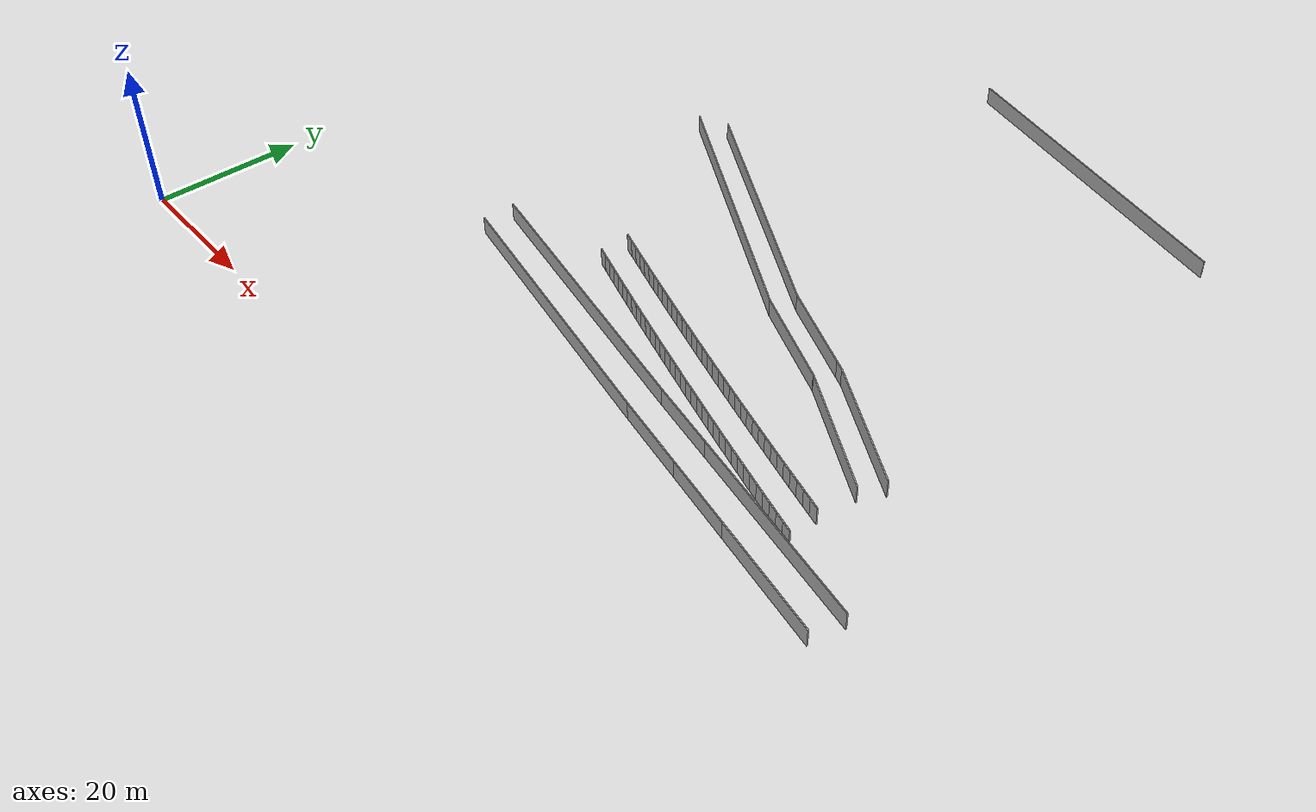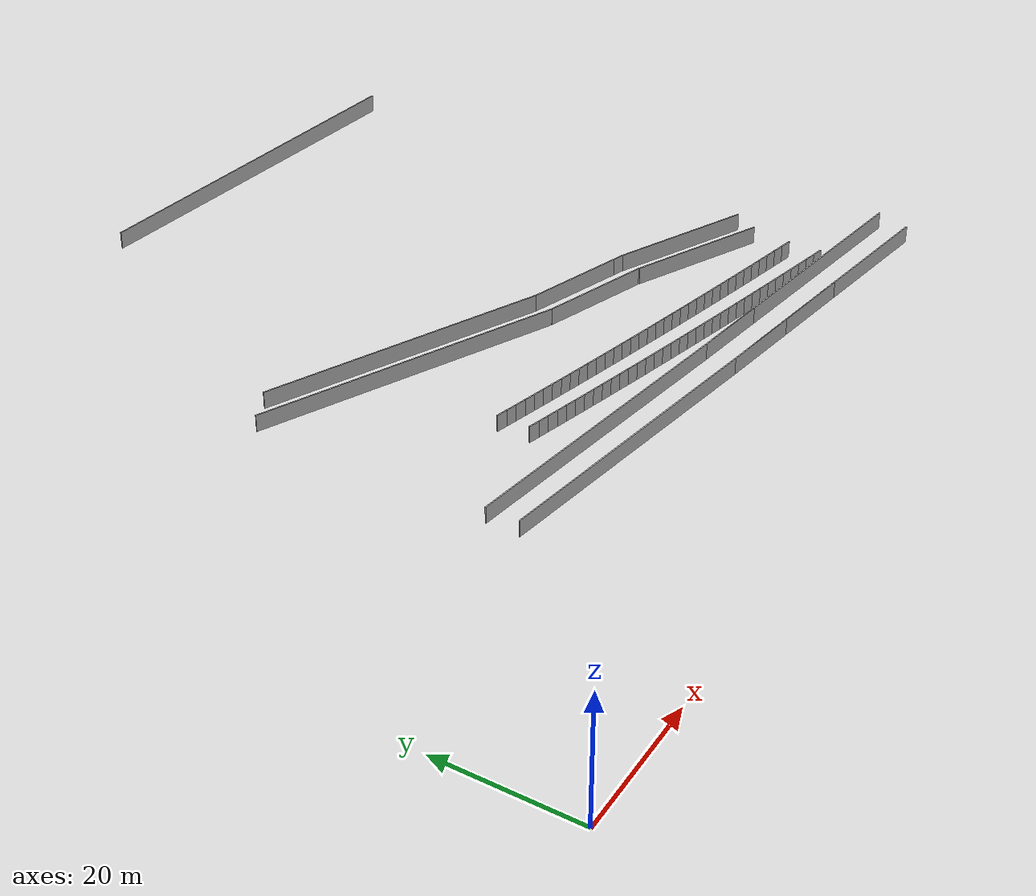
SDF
<sdf version="1.6">
 <model name="sps_0802">
  <static>1</static>
  <allow_auto_disable>0</allow_auto_disable>
  <link name="Wall115">
   <collision name="collision"><geometry><box><size>18.2188 0.15 2.5</size></box></geometry></collision>
   <visual name="visual">
    <geometry><box><size>18.2188 0.15 2.5</size></box></geometry>
    <transparency>0.0</transparency>
   </visual>
   <pose>93.8209 39.7331 1.25 0 0 -0.498938</pose>
  </link>
  <link name="Wall116">
   <collision name="collision"><geometry><box><size>10.5897 0.15 2.5</size></box></geometry></collision>
   <visual name="visual">
    <geometry><box><size>10.5897 0.15 2.5</size></box></geometry>
    <transparency>0.0</transparency>
   </visual>
   <pose>79.2566 20.6364 1.25 0 0 -0.176184</pose>
  </link>
  <link name="Wall117">
   <collision name="collision"><geometry><box><size>10.3568 0.15 2.5</size></box></geometry></collision>
   <visual name="visual">
    <geometry><box><size>10.3568 0.15 2.5</size></box></geometry>
    <transparency>0.0</transparency>
   </visual>
   <pose>89.5677 18.8007 1.25 0 0 -0.176184</pose>
  </link>
  <link name="Wall189">
   <collision name="collision"><geometry><box><size>41.7006 0.15 2.5</size></box></geometry></collision>
   <visual name="visual">
    <geometry><box><size>41.7006 0.15 2.5</size></box></geometry>
    <transparency>0.0</transparency>
   </visual>
   <pose>52.7782 56.1772 1.25 0 -0 2.64268</pose>
  </link>
  <link name="Wall195">
   <collision name="collision"><geometry><box><size>14.2591 0.15 2.5</size></box></geometry></collision>
   <visual name="visual">
    <geometry><box><size>14.2591 0.15 2.5</size></box></geometry>
    <transparency>0.0</transparency>
   </visual>
   <pose>77.7093 43.5599 1.25 0 -0 2.76212</pose>
  </link>
  <link name="Wall283">
   <collision name="collision"><geometry><box><size>41.0751 0.15 2.5</size></box></geometry></collision>
   <visual name="visual">
    <geometry><box><size>41.0751 0.15 2.5</size></box></geometry>
    <transparency>0.0</transparency>
   </visual>
   <pose>54.6443 29.8393 1.25 0 -0 2.95339</pose>
  </link>
  <link name="Wall285">
   <collision name="collision"><geometry><box><size>9.80231 0.15 2.5</size></box></geometry></collision>
   <visual name="visual">
    <geometry><box><size>9.80231 0.15 2.5</size></box></geometry>
    <transparency>0.0</transparency>
   </visual>
   <pose>79.6443 25.1368 1.25 0 0 -0.176394</pose>
  </link>
  <link name="Wall286">
   <collision name="collision"><geometry><box><size>27.6822 0.15 2.5</size></box></geometry></collision>
   <visual name="visual">
    <geometry><box><size>27.6822 0.15 2.5</size></box></geometry>
    <transparency>0.0</transparency>
   </visual>
   <pose>98.0958 21.8479 1.25 0 0 -0.176394</pose>
  </link>
  <link name="Wall352">
   <collision name="collision"><geometry><box><size>40.2857 0.15 2.5</size></box></geometry></collision>
   <visual name="visual">
    <geometry><box><size>40.2857 0.15 2.5</size></box></geometry>
    <transparency>0.0</transparency>
   </visual>
   <pose>54.2566 25.3333 1.25 0 -0 2.95338</pose>
  </link>
  <link name="Wall433">
   <collision name="collision"><geometry><box><size>12.8028 0.15 2.5</size></box></geometry></collision>
   <visual name="visual">
    <geometry><box><size>12.8028 0.15 2.5</size></box></geometry>
    <transparency>0.0</transparency>
   </visual>
   <pose>78.5235 47.0026 1.25 0 0 -0.379479</pose>
  </link>
  <link name="Wall434">
   <collision name="collision"><geometry><box><size>1.4562 0.15 2.5</size></box></geometry></collision>
   <visual name="visual">
    <geometry><box><size>1.4562 0.15 2.5</size></box></geometry>
    <transparency>0.0</transparency>
   </visual>
   <pose>85.1457 44.3616 1.25 0 0 -0.379479</pose>
  </link>
  <link name="Wall531">
   <collision name="collision"><geometry><box><size>38.7045 0.15 2.5</size></box></geometry></collision>
   <visual name="visual">
    <geometry><box><size>38.7045 0.15 2.5</size></box></geometry>
    <transparency>0.0</transparency>
   </visual>
   <pose>55.5843 58.6335 1.25 0 0 -0.498918</pose>
  </link>
  <link name="Wall612">
   <collision name="collision"><geometry><box><size>17.9531 0.15 2.5</size></box></geometry></collision>
   <visual name="visual">
    <geometry><box><size>17.9531 0.15 2.5</size></box></geometry>
    <transparency>0.0</transparency>
   </visual>
   <pose>92.3516 36.5486 1.25 0 -0 2.64265</pose>
  </link>
  <link name="Wall613">
   <collision name="collision"><geometry><box><size>0.156951 0.15 2.5</size></box></geometry></collision>
   <visual name="visual">
    <geometry><box><size>0.156951 0.15 2.5</size></box></geometry>
    <transparency>0.0</transparency>
   </visual>
   <pose>84.4005 40.8813 1.25 0 -0 2.64265</pose>
  </link>
  <link name="Wall996">
   <collision name="collision"><geometry><box><size>37.2045 0.15 2.5</size></box></geometry></collision>
   <visual name="visual">
    <geometry><box><size>37.2045 0.15 2.5</size></box></geometry>
    <transparency>0.0</transparency>
   </visual>
   <pose>92.358 18.304 1.25 0 -0 2.96541</pose>
  </link>
  <link name="Wall1006">
   <collision name="collision"><geometry><box><size>37.4845 0.15 2.5</size></box></geometry></collision>
   <visual name="visual">
    <geometry><box><size>37.4845 0.15 2.5</size></box></geometry>
    <transparency>0.0</transparency>
   </visual>
   <pose>93.2707 22.708 1.25 0 0 -0.176394</pose>
  </link>
  <link name="Wall6628">
   <collision name="collision"><geometry><box><size>45.9415 0.15 2.5</size></box></geometry></collision>
   <visual name="visual">
    <geometry><box><size>45.9415 0.15 2.5</size></box></geometry>
    <transparency>0.0</transparency>
   </visual>
   <pose>78.7053 98.127 1.25 0 -0 2.9176</pose>
  </link>
  <link name="Wall8858">
   <collision name="collision"><geometry><box><size>1.49898 0.15 2.5</size></box></geometry></collision>
   <visual name="visual">
    <geometry><box><size>1.49898 0.15 2.5</size></box></geometry>
    <transparency>0.0</transparency>
   </visual>
   <pose>50.3594 36.5145 1.25 0 0 -0.302397</pose>
  </link>
  <link name="Wall8859">
   <collision name="collision"><geometry><box><size>1.49897 0.15 2.5</size></box></geometry></collision>
   <visual name="visual">
    <geometry><box><size>1.49897 0.15 2.5</size></box></geometry>
    <transparency>0.0</transparency>
   </visual>
   <pose>51.7906 36.0691 1.25 0 0 -0.300993</pose>
  </link>
  <link name="Wall8860">
   <collision name="collision"><geometry><box><size>1.49889 0.15 2.5</size></box></geometry></collision>
   <visual name="visual">
    <geometry><box><size>1.49889 0.15 2.5</size></box></geometry>
    <transparency>0.0</transparency>
   </visual>
   <pose>53.2226 35.6259 1.25 0 0 -0.299304</pose>
  </link>
  <link name="Wall8861">
   <collision name="collision"><geometry><box><size>1.49891 0.15 2.5</size></box></geometry></collision>
   <visual name="visual">
    <geometry><box><size>1.49891 0.15 2.5</size></box></geometry>
    <transparency>0.0</transparency>
   </visual>
   <pose>54.6552 35.1851 1.25 0 0 -0.297682</pose>
  </link>
  <link name="Wall8862">
   <collision name="collision"><geometry><box><size>1.49883 0.15 2.5</size></box></geometry></collision>
   <visual name="visual">
    <geometry><box><size>1.49883 0.15 2.5</size></box></geometry>
    <transparency>0.0</transparency>
   </visual>
   <pose>56.0885 34.7466 1.25 0 0 -0.296122</pose>
  </link>
  <link name="Wall8863">
   <collision name="collision"><geometry><box><size>1.49897 0.15 2.5</size></box></geometry></collision>
   <visual name="visual">
    <geometry><box><size>1.49897 0.15 2.5</size></box></geometry>
    <transparency>0.0</transparency>
   </visual>
   <pose>57.5225 34.3103 1.25 0 0 -0.294604</pose>
  </link>
  <link name="Wall8864">
   <collision name="collision"><geometry><box><size>1.49907 0.15 2.5</size></box></geometry></collision>
   <visual name="visual">
    <geometry><box><size>1.49907 0.15 2.5</size></box></geometry>
    <transparency>0.0</transparency>
   </visual>
   <pose>58.9572 33.8762 1.25 0 0 -0.293009</pose>
  </link>
  <link name="Wall8865">
   <collision name="collision"><geometry><box><size>1.4988 0.15 2.5</size></box></geometry></collision>
   <visual name="visual">
    <geometry><box><size>1.4988 0.15 2.5</size></box></geometry>
    <transparency>0.0</transparency>
   </visual>
   <pose>60.3926 33.4444 1.25 0 0 -0.291406</pose>
  </link>
  <link name="Wall8866">
   <collision name="collision"><geometry><box><size>1.49893 0.15 2.5</size></box></geometry></collision>
   <visual name="visual">
    <geometry><box><size>1.49893 0.15 2.5</size></box></geometry>
    <transparency>0.0</transparency>
   </visual>
   <pose>61.8286 33.0149 1.25 0 0 -0.28985</pose>
  </link>
  <link name="Wall8867">
   <collision name="collision"><geometry><box><size>1.49906 0.15 2.5</size></box></geometry></collision>
   <visual name="visual">
    <geometry><box><size>1.49906 0.15 2.5</size></box></geometry>
    <transparency>0.0</transparency>
   </visual>
   <pose>63.2654 32.5876 1.25 0 0 -0.288294</pose>
  </link>
  <link name="Wall8868">
   <collision name="collision"><geometry><box><size>1.4989 0.15 2.5</size></box></geometry></collision>
   <visual name="visual">
    <geometry><box><size>1.4989 0.15 2.5</size></box></geometry>
    <transparency>0.0</transparency>
   </visual>
   <pose>64.7029 32.1627 1.25 0 0 -0.2865</pose>
  </link>
  <link name="Wall8869">
   <collision name="collision"><geometry><box><size>1.49892 0.15 2.5</size></box></geometry></collision>
   <visual name="visual">
    <geometry><box><size>1.49892 0.15 2.5</size></box></geometry>
    <transparency>0.0</transparency>
   </visual>
   <pose>66.141 31.7401 1.25 0 0 -0.285096</pose>
  </link>
  <link name="Wall8870">
   <collision name="collision"><geometry><box><size>1.49896 0.15 2.5</size></box></geometry></collision>
   <visual name="visual">
    <geometry><box><size>1.49896 0.15 2.5</size></box></geometry>
    <transparency>0.0</transparency>
   </visual>
   <pose>67.5799 31.3198 1.25 0 0 -0.283305</pose>
  </link>
  <link name="Wall8871">
   <collision name="collision"><geometry><box><size>1.49905 0.15 2.5</size></box></geometry></collision>
   <visual name="visual">
    <geometry><box><size>1.49905 0.15 2.5</size></box></geometry>
    <transparency>0.0</transparency>
   </visual>
   <pose>69.0194 30.9017 1.25 0 0 -0.282058</pose>
  </link>
  <link name="Wall8872">
   <collision name="collision"><geometry><box><size>1.49891 0.15 2.5</size></box></geometry></collision>
   <visual name="visual">
    <geometry><box><size>1.49891 0.15 2.5</size></box></geometry>
    <transparency>0.0</transparency>
   </visual>
   <pose>70.4595 30.4857 1.25 0 0 -0.280392</pose>
  </link>
  <link name="Wall8873">
   <collision name="collision"><geometry><box><size>1.49882 0.15 2.5</size></box></geometry></collision>
   <visual name="visual">
    <geometry><box><size>1.49882 0.15 2.5</size></box></geometry>
    <transparency>0.0</transparency>
   </visual>
   <pose>71.9001 30.0721 1.25 0 0 -0.278714</pose>
  </link>
  <link name="Wall8874">
   <collision name="collision"><geometry><box><size>1.49905 0.15 2.5</size></box></geometry></collision>
   <visual name="visual">
    <geometry><box><size>1.49905 0.15 2.5</size></box></geometry>
    <transparency>0.0</transparency>
   </visual>
   <pose>73.3415 29.6608 1.25 0 0 -0.277187</pose>
  </link>
  <link name="Wall8875">
   <collision name="collision"><geometry><box><size>1.49893 0.15 2.5</size></box></geometry></collision>
   <visual name="visual">
    <geometry><box><size>1.49893 0.15 2.5</size></box></geometry>
    <transparency>0.0</transparency>
   </visual>
   <pose>74.7837 29.2518 1.25 0 0 -0.275559</pose>
  </link>
  <link name="Wall8876">
   <collision name="collision"><geometry><box><size>1.49891 0.15 2.5</size></box></geometry></collision>
   <visual name="visual">
    <geometry><box><size>1.49891 0.15 2.5</size></box></geometry>
    <transparency>0.0</transparency>
   </visual>
   <pose>76.2263 28.8451 1.25 0 0 -0.273998</pose>
  </link>
  <link name="Wall8877">
   <collision name="collision"><geometry><box><size>1.4989 0.15 2.5</size></box></geometry></collision>
   <visual name="visual">
    <geometry><box><size>1.4989 0.15 2.5</size></box></geometry>
    <transparency>0.0</transparency>
   </visual>
   <pose>77.6696 28.4406 1.25 0 0 -0.272477</pose>
  </link>
  <link name="Wall8878">
   <collision name="collision"><geometry><box><size>1.49903 0.15 2.5</size></box></geometry></collision>
   <visual name="visual">
    <geometry><box><size>1.49903 0.15 2.5</size></box></geometry>
    <transparency>0.0</transparency>
   </visual>
   <pose>79.1136 28.0384 1.25 0 0 -0.270805</pose>
  </link>
  <link name="Wall8879">
   <collision name="collision"><geometry><box><size>1.49903 0.15 2.5</size></box></geometry></collision>
   <visual name="visual">
    <geometry><box><size>1.49903 0.15 2.5</size></box></geometry>
    <transparency>0.0</transparency>
   </visual>
   <pose>80.5583 27.6385 1.25 0 0 -0.269284</pose>
  </link>
  <link name="Wall8880">
   <collision name="collision"><geometry><box><size>1.49886 0.15 2.5</size></box></geometry></collision>
   <visual name="visual">
    <geometry><box><size>1.49886 0.15 2.5</size></box></geometry>
    <transparency>0.0</transparency>
   </visual>
   <pose>82.0036 27.2408 1.25 0 0 -0.267795</pose>
  </link>
  <link name="Wall8881">
   <collision name="collision"><geometry><box><size>1.49894 0.15 2.5</size></box></geometry></collision>
   <visual name="visual">
    <geometry><box><size>1.49894 0.15 2.5</size></box></geometry>
    <transparency>0.0</transparency>
   </visual>
   <pose>83.4494 26.8454 1.25 0 0 -0.266134</pose>
  </link>
  <link name="Wall8882">
   <collision name="collision"><geometry><box><size>1.49899 0.15 2.5</size></box></geometry></collision>
   <visual name="visual">
    <geometry><box><size>1.49899 0.15 2.5</size></box></geometry>
    <transparency>0.0</transparency>
   </visual>
   <pose>84.8959 26.4523 1.25 0 0 -0.264563</pose>
  </link>
  <link name="Wall8883">
   <collision name="collision"><geometry><box><size>1.4989 0.15 2.5</size></box></geometry></collision>
   <visual name="visual">
    <geometry><box><size>1.4989 0.15 2.5</size></box></geometry>
    <transparency>0.0</transparency>
   </visual>
   <pose>86.343 26.0615 1.25 0 0 -0.262934</pose>
  </link>
  <link name="Wall8884">
   <collision name="collision"><geometry><box><size>1.49888 0.15 2.5</size></box></geometry></collision>
   <visual name="visual">
    <geometry><box><size>1.49888 0.15 2.5</size></box></geometry>
    <transparency>0.0</transparency>
   </visual>
   <pose>87.7907 25.6731 1.25 0 0 -0.261295</pose>
  </link>
  <link name="Wall8885">
   <collision name="collision"><geometry><box><size>1.4989 0.15 2.5</size></box></geometry></collision>
   <visual name="visual">
    <geometry><box><size>1.4989 0.15 2.5</size></box></geometry>
    <transparency>0.0</transparency>
   </visual>
   <pose>89.239 25.287 1.25 0 0 -0.259774</pose>
  </link>
  <link name="Wall8886">
   <collision name="collision"><geometry><box><size>1.49887 0.15 2.5</size></box></geometry></collision>
   <visual name="visual">
    <geometry><box><size>1.49887 0.15 2.5</size></box></geometry>
    <transparency>0.0</transparency>
   </visual>
   <pose>90.6879 24.9031 1.25 0 0 -0.258263</pose>
  </link>
  <link name="Wall8887">
   <collision name="collision"><geometry><box><size>1.49913 0.15 2.5</size></box></geometry></collision>
   <visual name="visual">
    <geometry><box><size>1.49913 0.15 2.5</size></box></geometry>
    <transparency>0.0</transparency>
   </visual>
   <pose>92.1374 24.5214 1.25 0 0 -0.2567</pose>
  </link>
  <link name="Wall8888">
   <collision name="collision"><geometry><box><size>1.49882 0.15 2.5</size></box></geometry></collision>
   <visual name="visual">
    <geometry><box><size>1.49882 0.15 2.5</size></box></geometry>
    <transparency>0.0</transparency>
   </visual>
   <pose>93.5876 24.1421 1.25 0 0 -0.254944</pose>
  </link>
  <link name="Wall8889">
   <collision name="collision"><geometry><box><size>1.49897 0.15 2.5</size></box></geometry></collision>
   <visual name="visual">
    <geometry><box><size>1.49897 0.15 2.5</size></box></geometry>
    <transparency>0.0</transparency>
   </visual>
   <pose>95.0384 23.7651 1.25 0 0 -0.253531</pose>
  </link>
  <link name="Wall8890">
   <collision name="collision"><geometry><box><size>1.49908 0.15 2.5</size></box></geometry></collision>
   <visual name="visual">
    <geometry><box><size>1.49908 0.15 2.5</size></box></geometry>
    <transparency>0.0</transparency>
   </visual>
   <pose>96.4898 23.3903 1.25 0 0 -0.251871</pose>
  </link>
  <link name="Wall8891">
   <collision name="collision"><geometry><box><size>1.49895 0.15 2.5</size></box></geometry></collision>
   <visual name="visual">
    <geometry><box><size>1.49895 0.15 2.5</size></box></geometry>
    <transparency>0.0</transparency>
   </visual>
   <pose>97.9418 23.0178 1.25 0 0 -0.250381</pose>
  </link>
  <link name="Wall8892">
   <collision name="collision"><geometry><box><size>1.49889 0.15 2.5</size></box></geometry></collision>
   <visual name="visual">
    <geometry><box><size>1.49889 0.15 2.5</size></box></geometry>
    <transparency>0.0</transparency>
   </visual>
   <pose>99.3942 22.6476 1.25 0 0 -0.248751</pose>
  </link>
  <link name="Wall9938">
   <collision name="collision"><geometry><box><size>1.4924 0.15 2.5</size></box></geometry></collision>
   <visual name="visual">
    <geometry><box><size>1.4924 0.15 2.5</size></box></geometry>
    <transparency>0.0</transparency>
   </visual>
   <pose>50.1681 40.9123 1.25 0 0 -0.304032</pose>
  </link>
  <link name="Wall9939">
   <collision name="collision"><geometry><box><size>1.4924 0.15 2.5</size></box></geometry></collision>
   <visual name="visual">
    <geometry><box><size>1.4924 0.15 2.5</size></box></geometry>
    <transparency>0.0</transparency>
   </visual>
   <pose>51.5923 40.4666 1.25 0 0 -0.302531</pose>
  </link>
  <link name="Wall9940">
   <collision name="collision"><geometry><box><size>1.49248 0.15 2.5</size></box></geometry></collision>
   <visual name="visual">
    <geometry><box><size>1.49248 0.15 2.5</size></box></geometry>
    <transparency>0.0</transparency>
   </visual>
   <pose>53.0174 40.0231 1.25 0 0 -0.300928</pose>
  </link>
  <link name="Wall9941">
   <collision name="collision"><geometry><box><size>1.49231 0.15 2.5</size></box></geometry></collision>
   <visual name="visual">
    <geometry><box><size>1.49231 0.15 2.5</size></box></geometry>
    <transparency>0.0</transparency>
   </visual>
   <pose>54.443 39.5819 1.25 0 0 -0.299296</pose>
  </link>
  <link name="Wall9942">
   <collision name="collision"><geometry><box><size>1.4926 0.15 2.5</size></box></geometry></collision>
   <visual name="visual">
    <geometry><box><size>1.4926 0.15 2.5</size></box></geometry>
    <transparency>0.0</transparency>
   </visual>
   <pose>55.8695 39.1431 1.25 0 0 -0.297567</pose>
  </link>
  <link name="Wall9943">
   <collision name="collision"><geometry><box><size>1.4924 0.15 2.5</size></box></geometry></collision>
   <visual name="visual">
    <geometry><box><size>1.4924 0.15 2.5</size></box></geometry>
    <transparency>0.0</transparency>
   </visual>
   <pose>57.2967 38.7065 1.25 0 0 -0.296154</pose>
  </link>
  <link name="Wall9944">
   <collision name="collision"><geometry><box><size>1.4923 0.15 2.5</size></box></geometry></collision>
   <visual name="visual">
    <geometry><box><size>1.4923 0.15 2.5</size></box></geometry>
    <transparency>0.0</transparency>
   </visual>
   <pose>58.7244 38.272 1.25 0 0 -0.294677</pose>
  </link>
  <link name="Wall9945">
   <collision name="collision"><geometry><box><size>1.49243 0.15 2.5</size></box></geometry></collision>
   <visual name="visual">
    <geometry><box><size>1.49243 0.15 2.5</size></box></geometry>
    <transparency>0.0</transparency>
   </visual>
   <pose>60.1529 37.8398 1.25 0 0 -0.292984</pose>
  </link>
  <link name="Wall9946">
   <collision name="collision"><geometry><box><size>1.49243 0.15 2.5</size></box></geometry></collision>
   <visual name="visual">
    <geometry><box><size>1.49243 0.15 2.5</size></box></geometry>
    <transparency>0.0</transparency>
   </visual>
   <pose>61.5821 37.41 1.25 0 0 -0.291277</pose>
  </link>
  <link name="Wall9947">
   <collision name="collision"><geometry><box><size>1.49221 0.15 2.5</size></box></geometry></collision>
   <visual name="visual">
    <geometry><box><size>1.49221 0.15 2.5</size></box></geometry>
    <transparency>0.0</transparency>
   </visual>
   <pose>63.0118 36.9825 1.25 0 0 -0.289784</pose>
  </link>
  <link name="Wall9948">
   <collision name="collision"><geometry><box><size>1.49258 0.15 2.5</size></box></geometry></collision>
   <visual name="visual">
    <geometry><box><size>1.49258 0.15 2.5</size></box></geometry>
    <transparency>0.0</transparency>
   </visual>
   <pose>64.4423 36.5572 1.25 0 0 -0.288175</pose>
  </link>
  <link name="Wall9949">
   <collision name="collision"><geometry><box><size>1.49231 0.15 2.5</size></box></geometry></collision>
   <visual name="visual">
    <geometry><box><size>1.49231 0.15 2.5</size></box></geometry>
    <transparency>0.0</transparency>
   </visual>
   <pose>65.8736 36.1341 1.25 0 0 -0.286693</pose>
  </link>
  <link name="Wall9950">
   <collision name="collision"><geometry><box><size>1.49245 0.15 2.5</size></box></geometry></collision>
   <visual name="visual">
    <geometry><box><size>1.49245 0.15 2.5</size></box></geometry>
    <transparency>0.0</transparency>
   </visual>
   <pose>67.3054 35.7132 1.25 0 0 -0.285131</pose>
  </link>
  <link name="Wall9951">
   <collision name="collision"><geometry><box><size>1.49237 0.15 2.5</size></box></geometry></collision>
   <visual name="visual">
    <geometry><box><size>1.49237 0.15 2.5</size></box></geometry>
    <transparency>0.0</transparency>
   </visual>
   <pose>68.7378 35.2946 1.25 0 0 -0.283485</pose>
  </link>
  <link name="Wall9952">
   <collision name="collision"><geometry><box><size>1.49251 0.15 2.5</size></box></geometry></collision>
   <visual name="visual">
    <geometry><box><size>1.49251 0.15 2.5</size></box></geometry>
    <transparency>0.0</transparency>
   </visual>
   <pose>70.171 34.8783 1.25 0 0 -0.281923</pose>
  </link>
  <link name="Wall9953">
   <collision name="collision"><geometry><box><size>1.49247 0.15 2.5</size></box></geometry></collision>
   <visual name="visual">
    <geometry><box><size>1.49247 0.15 2.5</size></box></geometry>
    <transparency>0.0</transparency>
   </visual>
   <pose>71.6049 34.4642 1.25 0 0 -0.280356</pose>
  </link>
  <link name="Wall9954">
   <collision name="collision"><geometry><box><size>1.4924 0.15 2.5</size></box></geometry></collision>
   <visual name="visual">
    <geometry><box><size>1.4924 0.15 2.5</size></box></geometry>
    <transparency>0.0</transparency>
   </visual>
   <pose>73.0395 34.0524 1.25 0 0 -0.27871</pose>
  </link>
  <link name="Wall9955">
   <collision name="collision"><geometry><box><size>1.49241 0.15 2.5</size></box></geometry></collision>
   <visual name="visual">
    <geometry><box><size>1.49241 0.15 2.5</size></box></geometry>
    <transparency>0.0</transparency>
   </visual>
   <pose>74.4746 33.6429 1.25 0 0 -0.277221</pose>
  </link>
  <link name="Wall9956">
   <collision name="collision"><geometry><box><size>1.49227 0.15 2.5</size></box></geometry></collision>
   <visual name="visual">
    <geometry><box><size>1.49227 0.15 2.5</size></box></geometry>
    <transparency>0.0</transparency>
   </visual>
   <pose>75.9103 33.2357 1.25 0 0 -0.275547</pose>
  </link>
  <link name="Wall9957">
   <collision name="collision"><geometry><box><size>1.49224 0.15 2.5</size></box></geometry></collision>
   <visual name="visual">
    <geometry><box><size>1.49224 0.15 2.5</size></box></geometry>
    <transparency>0.0</transparency>
   </visual>
   <pose>77.3465 32.8308 1.25 0 0 -0.273979</pose>
  </link>
  <link name="Wall9958">
   <collision name="collision"><geometry><box><size>1.49267 0.15 2.5</size></box></geometry></collision>
   <visual name="visual">
    <geometry><box><size>1.49267 0.15 2.5</size></box></geometry>
    <transparency>0.0</transparency>
   </visual>
   <pose>78.7837 32.4281 1.25 0 0 -0.272413</pose>
  </link>
  <link name="Wall9959">
   <collision name="collision"><geometry><box><size>1.49243 0.15 2.5</size></box></geometry></collision>
   <visual name="visual">
    <geometry><box><size>1.49243 0.15 2.5</size></box></geometry>
    <transparency>0.0</transparency>
   </visual>
   <pose>80.2215 32.0276 1.25 0 0 -0.270929</pose>
  </link>
  <link name="Wall9960">
   <collision name="collision"><geometry><box><size>1.49254 0.15 2.5</size></box></geometry></collision>
   <visual name="visual">
    <geometry><box><size>1.49254 0.15 2.5</size></box></geometry>
    <transparency>0.0</transparency>
   </visual>
   <pose>81.6598 31.6294 1.25 0 0 -0.269211</pose>
  </link>
  <link name="Wall9961">
   <collision name="collision"><geometry><box><size>1.49221 0.15 2.5</size></box></geometry></collision>
   <visual name="visual">
    <geometry><box><size>1.49221 0.15 2.5</size></box></geometry>
    <transparency>0.0</transparency>
   </visual>
   <pose>83.0987 31.2335 1.25 0 0 -0.267787</pose>
  </link>
  <link name="Wall9962">
   <collision name="collision"><geometry><box><size>1.49238 0.15 2.5</size></box></geometry></collision>
   <visual name="visual">
    <geometry><box><size>1.49238 0.15 2.5</size></box></geometry>
    <transparency>0.0</transparency>
   </visual>
   <pose>84.5382 30.8398 1.25 0 0 -0.266187</pose>
  </link>
  <link name="Wall9963">
   <collision name="collision"><geometry><box><size>1.49246 0.15 2.5</size></box></geometry></collision>
   <visual name="visual">
    <geometry><box><size>1.49246 0.15 2.5</size></box></geometry>
    <transparency>0.0</transparency>
   </visual>
   <pose>85.9784 30.4484 1.25 0 0 -0.26452</pose>
  </link>
  <link name="Wall9964">
   <collision name="collision"><geometry><box><size>1.49231 0.15 2.5</size></box></geometry></collision>
   <visual name="visual">
    <geometry><box><size>1.49231 0.15 2.5</size></box></geometry>
    <transparency>0.0</transparency>
   </visual>
   <pose>87.4192 30.0594 1.25 0 0 -0.262894</pose>
  </link>
  <link name="Wall9965">
   <collision name="collision"><geometry><box><size>1.49245 0.15 2.5</size></box></geometry></collision>
   <visual name="visual">
    <geometry><box><size>1.49245 0.15 2.5</size></box></geometry>
    <transparency>0.0</transparency>
   </visual>
   <pose>88.8606 29.6727 1.25 0 0 -0.261345</pose>
  </link>
  <link name="Wall9966">
   <collision name="collision"><geometry><box><size>1.49246 0.15 2.5</size></box></geometry></collision>
   <visual name="visual">
    <geometry><box><size>1.49246 0.15 2.5</size></box></geometry>
    <transparency>0.0</transparency>
   </visual>
   <pose>90.3026 29.2882 1.25 0 0 -0.259778</pose>
  </link>
  <link name="Wall9967">
   <collision name="collision"><geometry><box><size>1.49228 0.15 2.5</size></box></geometry></collision>
   <visual name="visual">
    <geometry><box><size>1.49228 0.15 2.5</size></box></geometry>
    <transparency>0.0</transparency>
   </visual>
   <pose>91.7452 28.906 1.25 0 0 -0.258202</pose>
  </link>
  <link name="Wall9968">
   <collision name="collision"><geometry><box><size>1.49252 0.15 2.5</size></box></geometry></collision>
   <visual name="visual">
    <geometry><box><size>1.49252 0.15 2.5</size></box></geometry>
    <transparency>0.0</transparency>
   </visual>
   <pose>93.1884 28.526 1.25 0 0 -0.256722</pose>
  </link>
  <link name="Wall9969">
   <collision name="collision"><geometry><box><size>1.49228 0.15 2.5</size></box></geometry></collision>
   <visual name="visual">
    <geometry><box><size>1.49228 0.15 2.5</size></box></geometry>
    <transparency>0.0</transparency>
   </visual>
   <pose>94.6323 28.1483 1.25 0 0 -0.254988</pose>
  </link>
  <link name="Wall9970">
   <collision name="collision"><geometry><box><size>1.49248 0.15 2.5</size></box></geometry></collision>
   <visual name="visual">
    <geometry><box><size>1.49248 0.15 2.5</size></box></geometry>
    <transparency>0.0</transparency>
   </visual>
   <pose>96.0767 27.7729 1.25 0 0 -0.253558</pose>
  </link>
  <link name="Wall9971">
   <collision name="collision"><geometry><box><size>1.49232 0.15 2.5</size></box></geometry></collision>
   <visual name="visual">
    <geometry><box><size>1.49232 0.15 2.5</size></box></geometry>
    <transparency>0.0</transparency>
   </visual>
   <pose>97.5217 27.3998 1.25 0 0 -0.251813</pose>
  </link>
  <link name="Wall9972">
   <collision name="collision"><geometry><box><size>1.49252 0.15 2.5</size></box></geometry></collision>
   <visual name="visual">
    <geometry><box><size>1.49252 0.15 2.5</size></box></geometry>
    <transparency>0.0</transparency>
   </visual>
   <pose>98.9673 27.029 1.25 0 0 -0.250384</pose>
  </link>
 </model>
</sdf>
